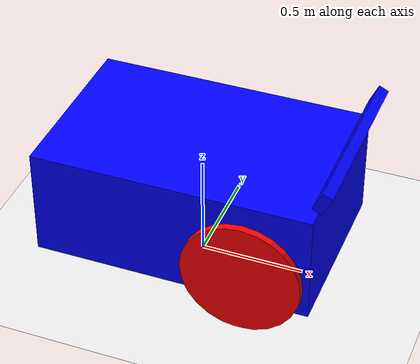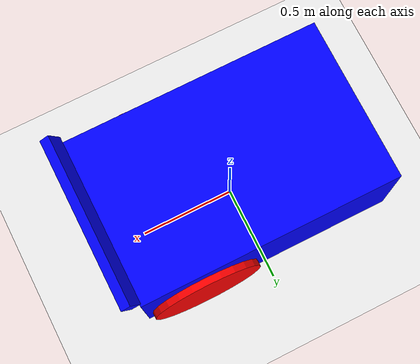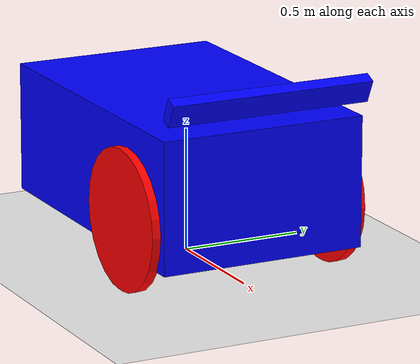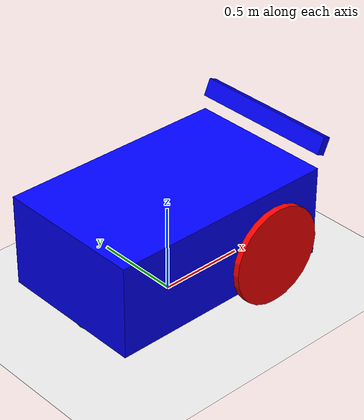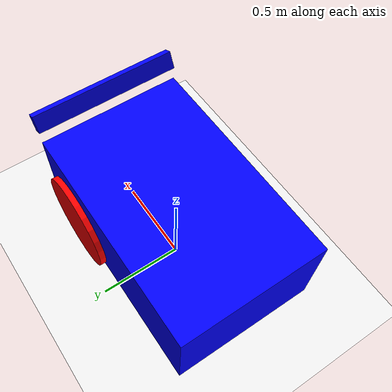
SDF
<sdf version="1.7">
 <world name="default">
  <light name="sun" type="directional">
   <pose>0 0 10 0 -0 0</pose>
   <diffuse>0.8 0.8 0.8 1</diffuse>
   <specular>0.2 0.2 0.2 1</specular>
   <attenuation>
    <range>1000</range>
    <constant>0.9</constant>
    <linear>0.01</linear>
    <quadratic>0.001</quadratic>
   </attenuation>
   <direction>-0.5 0.1 -0.9</direction>
   <spot><inner_angle>0</inner_angle><outer_angle>0</outer_angle><falloff>0</falloff></spot>
  </light>
  <model name="ground_plane">
   <static>1</static>
   <link name="link">
    <collision name="collision">
     <geometry><plane><normal>0 0 1</normal><size>100 100</size></plane></geometry>
     <surface><friction><ode><mu>100</mu><mu2>50</mu2></ode></friction></surface>
    </collision>
    <visual name="visual">
     <cast_shadows>0</cast_shadows>
     <geometry><plane><normal>0 0 1</normal><size>100 100</size></plane></geometry>
     <material>
      <script><uri>file://media/materials/scripts/gazebo.material</uri><name>Gazebo/White</name></script>
     </material>
    </visual>
   </link>
  </model>
  <gravity>0 0 -9.8</gravity>
  <magnetic_field>6e-06 2.3e-05 -4.2e-05</magnetic_field>
  <atmosphere type="adiabatic"/>
  <physics type="ode">
   <max_step_size>0.001</max_step_size>
   <real_time_factor>1</real_time_factor>
   <real_time_update_rate>1000</real_time_update_rate>
  </physics>
  <scene><ambient>0.4 0.4 0.4 1</ambient><background>0.7 0.7 0.7 1</background><shadows>1</shadows></scene>
  <audio><device>default</device></audio>
  <spherical_coordinates>
   <surface_model>EARTH_WGS84</surface_model>
   <latitude_deg>0</latitude_deg>
   <longitude_deg>0</longitude_deg>
   <elevation>0</elevation>
   <heading_deg>0</heading_deg>
  </spherical_coordinates>
  <light name="user_directional_light_0" type="directional">
   <pose>-0.337121 0.392333 1 0 -0 0</pose>
   <diffuse>0.5 0.5 0.5 1</diffuse>
   <specular>0.1 0.1 0.1 1</specular>
   <direction>0.1 0.1 -0.9</direction>
   <attenuation>
    <range>20</range>
    <constant>0.5</constant>
    <linear>0.01</linear>
    <quadratic>0.001</quadratic>
   </attenuation>
   <spot><inner_angle>0</inner_angle><outer_angle>0</outer_angle><falloff>0</falloff></spot>
  </light>
  <model name="jetbot_sim" canonical_link="chassis">
   <link name="camera_chassis">
    <pose relative_to="chassis">0.7 0 0.385 0 0.436332 0</pose>
    <inertial>
     <mass>0.1</mass>
     <inertia><ixx>0.145833</ixx><ixy>0</ixy><ixz>0</ixz><iyy>0.145833</iyy><iyz>0</iyz><izz>0.125</izz></inertia>
    </inertial>
    <visual name="visual">
     <geometry><box><size>0.05 0.85 0.1</size></box></geometry>
     <material>
      <ambient>0.0 0.0 1.0 1</ambient>
      <diffuse>0.0 0.0 1.0 1</diffuse>
      <specular>0.0 0.0 1.0 1</specular>
     </material>
    </visual>
    <collision name="collision"><geometry><box><size>0.1 0.85 0.1</size></box></geometry></collision>
   </link>
   <link name="chassis">
    <pose relative_to="__model__">0 0 0.4 0 0 0</pose>
    <inertial>
     <mass>11.4395</mass>
     <inertia>
      <ixx>0.688753</ixx>
      <ixy>0</ixy>
      <ixz>0</ixz>
      <iyy>1.686278</iyy>
      <iyz>0</iyz>
      <izz>2.375031</izz>
     </inertia>
    </inertial>
    <visual name="visual">
     <geometry><box><size>1.33 0.85 0.53</size></box></geometry>
     <material>
      <ambient>0.0 0.0 1.0 1</ambient>
      <diffuse>0.0 0.0 1.0 1</diffuse>
      <specular>0.0 0.0 1.0 1</specular>
     </material>
    </visual>
    <collision name="collision"><geometry><box><size>1.33 0.85 0.53</size></box></geometry></collision>
    <sensor name="camera1" type="camera">
     <pose relative_to="camera_chassis">0.05 0.0364902851051 0.05 0 0 0</pose>
     <topic>camera/left</topic>
     <camera>
      <horizontal_fov>2.44346</horizontal_fov>
      <image><width>500</width><height>300</height><format>L8</format></image>
      <clip><near>0.1</near><far>100</far></clip>
      <lens>
       <intrinsics>
        <fx>307.99879313442784</fx>
        <fy>328.57751082369407</fy>
        <cx>280.24657373225784</cx>
        <cy>134.9335316514946</cy>
        <s>0</s>
       </intrinsics>
      </lens>
     </camera>
     <always_on>1</always_on>
     <update_rate>4</update_rate>
     <visualize>true</visualize>
     <plugin name="camera_controller1" filename="libgazebo_ros_camera.so">
      <frame_name>camera_link_optical</frame_name>
     </plugin>
    </sensor>
    <sensor name="camera2" type="camera">
     <pose relative_to="camera_chassis">0.05 -0.0364902851051 0.05 0 0 0</pose>
     <topic>camera/right</topic>
     <camera>
      <horizontal_fov>2.44346</horizontal_fov>
      <image><width>500</width><height>300</height><format>L8</format></image>
      <clip><near>0.1</near><far>100</far></clip>
      <lens>
       <intrinsics>
        <fx>307.1754049460059</fx>
        <fy>328.803046449949</fy>
        <cx>265.74658118131305</cx>
        <cy>141.73334383034592</cy>
        <s>0</s>
       </intrinsics>
      </lens>
     </camera>
     <always_on>1</always_on>
     <update_rate>4</update_rate>
     <visualize>true</visualize>
     <plugin name="camera_controller2" filename="libgazebo_ros_camera.so">
      <frame_name>camera_link_optical</frame_name>
     </plugin>
    </sensor>
   </link>
   <link name="left_wheel">
    <pose relative_to="chassis">0.35 0.44 -0.12 -1.5707 0 0</pose>
    <inertial>
     <mass>2</mass>
     <inertia><ixx>0.145833</ixx><ixy>0</ixy><ixz>0</ixz><iyy>0.145833</iyy><iyz>0</iyz><izz>0.125</izz></inertia>
    </inertial>
    <visual name="visual">
     <geometry><cylinder><radius>0.285</radius><length>0.04</length></cylinder></geometry>
     <material>
      <ambient>1.0 0.0 0.0 1</ambient>
      <diffuse>1.0 0.0 0.0 1</diffuse>
      <specular>1.0 0.0 0.0 1</specular>
     </material>
    </visual>
    <collision name="collision">
     <geometry><cylinder><radius>0.285</radius><length>0.04</length></cylinder></geometry>
    </collision>
   </link>
   <link name="right_wheel">
    <pose relative_to="chassis">0.35 -0.44 -0.12 -1.5707 0 0</pose>
    <inertial>
     <mass>2</mass>
     <inertia>
      <ixx>0.040879</ixx>
      <ixy>0</ixy>
      <ixz>0</ixz>
      <iyy>0.040879</iyy>
      <iyz>0</iyz>
      <izz>0.081225</izz>
     </inertia>
    </inertial>
    <visual name="visual">
     <geometry><cylinder><radius>0.285</radius><length>0.04</length></cylinder></geometry>
     <material>
      <ambient>1.0 0.0 0.0 1</ambient>
      <diffuse>1.0 0.0 0.0 1</diffuse>
      <specular>1.0 0.0 0.0 1</specular>
     </material>
    </visual>
    <collision name="collision">
     <geometry><cylinder><radius>0.285</radius><length>0.04</length></cylinder></geometry>
    </collision>
   </link>
   <frame name="caster_frame" attached_to="chassis"><pose>-0.5 0 -0.271 0 0 0</pose></frame>
   <link name="caster">
    <pose relative_to="caster_frame"/>
    <inertial>
     <mass>2</mass>
     <inertia><ixx>0.01352</ixx><ixy>0</ixy><ixz>0</ixz><iyy>0.01352</iyy><iyz>0</iyz><izz>0.01352</izz></inertia>
    </inertial>
    <visual name="visual">
     <geometry><sphere><radius>0.13</radius></sphere></geometry>
     <material>
      <ambient>0.0 1 0.0 1</ambient>
      <diffuse>0.0 1 0.0 1</diffuse>
      <specular>0.0 1 0.0 1</specular>
     </material>
    </visual>
    <collision name="collision"><geometry><sphere><radius>0.13</radius></sphere></geometry></collision>
   </link>
   <joint name="cam_joint" type="fixed">
    <pose relative_to="chassis"/>
    <parent>chassis</parent>
    <child>camera_chassis</child>
    <axis>
     <xyz expressed_in="__model__">1 0 0</xyz>
     <limit><lower>-1.79769e+308</lower><upper>1.79769e+308</upper></limit>
    </axis>
   </joint>
   <joint name="left_wheel_joint" type="revolute">
    <pose relative_to="left_wheel"/>
    <parent>chassis</parent>
    <child>left_wheel</child>
    <axis>
     <xyz expressed_in="__model__">0 1 0</xyz>
     <limit><lower>-1.79769e+308</lower><upper>1.79769e+308</upper></limit>
    </axis>
   </joint>
   <joint name="right_wheel_joint" type="revolute">
    <pose relative_to="right_wheel"/>
    <parent>chassis</parent>
    <child>right_wheel</child>
    <axis>
     <xyz expressed_in="__model__">0 1 0</xyz>
     <limit><lower>-1.79769e+308</lower><upper>1.79769e+308</upper></limit>
    </axis>
   </joint>
   <joint name="caster_wheel" type="ball"><parent>chassis</parent><child>caster</child></joint>
   <plugin name="diff_drive" filename="libgazebo_ros_diff_drive.so">
    <left_joint>left_wheel_joint</left_joint>
    <right_joint>right_wheel_joint</right_joint>
    <wheel_separation>0.44</wheel_separation>
    <wheel_diameter>0.57</wheel_diameter>
    <max_wheel_torque>20</max_wheel_torque>
    <max_wheel_acceleration>1.0</max_wheel_acceleration>
    <publish_odom>true</publish_odom>
    <publish_odom_tf>true</publish_odom_tf>
    <publish_wheel_tf>true</publish_wheel_tf>
   </plugin>
  </model>
 </world>
</sdf>
